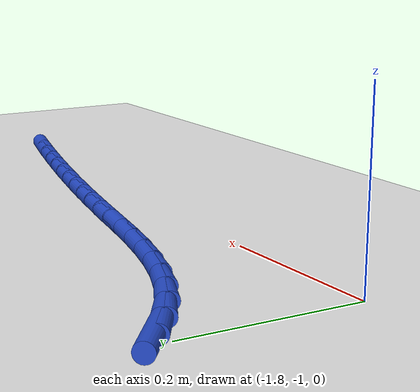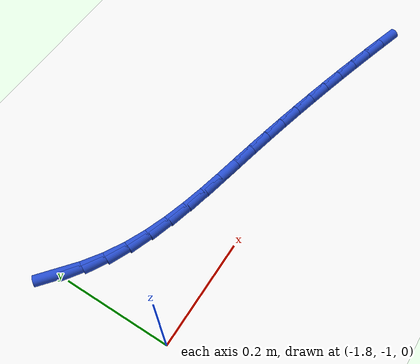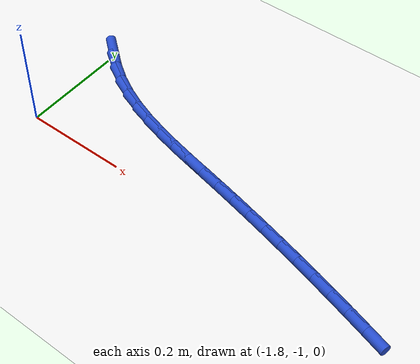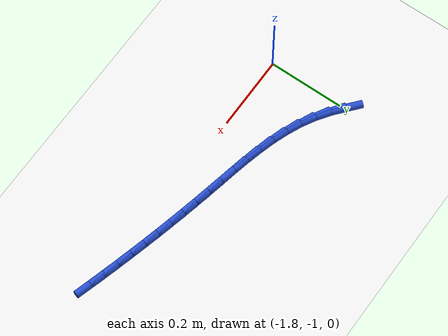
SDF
<sdf version="1.6">
 <world name="default">
  <model name="ground_plane">
   <static>1</static>
   <link name="link">
    <collision name="collision">
     <geometry><plane><normal>0 0 1</normal><size>100 100</size></plane></geometry>
     <surface><friction><ode><mu>100</mu><mu2>50</mu2></ode></friction></surface>
    </collision>
    <visual name="visual">
     <cast_shadows>0</cast_shadows>
     <geometry><plane><normal>0 0 1</normal><size>100 100</size></plane></geometry>
     <material>
      <script><uri>file://media/materials/scripts/gazebo.material</uri><name>Gazebo/WhiteGlow</name></script>
     </material>
    </visual>
   </link>
  </model>
  <model name="line">
   <link name="link_99">
    <pose>-1.8013743119323045 -0.7814317315127216 0.01 0 1.57 -0.6939951414744405</pose>
    <collision name="collision">
     <geometry><cylinder><radius>0.01</radius><length>0.08</length></cylinder></geometry>
    </collision>
    <visual name="visual">
     <material>
      <script><name>Gazebo/Blue</name><uri>file://media/materials/scripts/gazebo.material</uri></script>
     </material>
     <geometry><cylinder><radius>0.01</radius><length>0.08</length></cylinder></geometry>
    </visual>
   </link>
   <link name="link_100">
    <pose>-1.7701022036587113 -0.807452468249835 0.01 0 1.57 -0.6033100897275476</pose>
    <collision name="collision">
     <geometry><cylinder><radius>0.01</radius><length>0.08</length></cylinder></geometry>
    </collision>
    <visual name="visual">
     <material>
      <script><name>Gazebo/Blue</name><uri>file://media/materials/scripts/gazebo.material</uri></script>
     </material>
     <geometry><cylinder><radius>0.01</radius><length>0.08</length></cylinder></geometry>
    </visual>
   </link>
   <link name="link_101">
    <pose>-1.736808168899855 -0.8303922982501177 0.01 0 1.57 -0.5067956188985966</pose>
    <collision name="collision">
     <geometry><cylinder><radius>0.01</radius><length>0.08</length></cylinder></geometry>
    </collision>
    <visual name="visual">
     <material>
      <script><name>Gazebo/Blue</name><uri>file://media/materials/scripts/gazebo.material</uri></script>
     </material>
     <geometry><cylinder><radius>0.01</radius><length>0.08</length></cylinder></geometry>
    </visual>
   </link>
   <link name="link_102">
    <pose>-1.7014917855247105 -0.8499985152830396 0.01 0 1.57 -0.41767024187886886</pose>
    <collision name="collision">
     <geometry><cylinder><radius>0.01</radius><length>0.08</length></cylinder></geometry>
    </collision>
    <visual name="visual">
     <material>
      <script><name>Gazebo/Blue</name><uri>file://media/materials/scripts/gazebo.material</uri></script>
     </material>
     <geometry><cylinder><radius>0.01</radius><length>0.08</length></cylinder></geometry>
    </visual>
   </link>
   <link name="link_103">
    <pose>-1.6643676575839117 -0.8664735005263349 0.01 0 1.57 -0.34468582524345803</pose>
    <collision name="collision">
     <geometry><cylinder><radius>0.01</radius><length>0.08</length></cylinder></geometry>
    </collision>
    <visual name="visual">
     <material>
      <script><name>Gazebo/Blue</name><uri>file://media/materials/scripts/gazebo.material</uri></script>
     </material>
     <geometry><cylinder><radius>0.01</radius><length>0.08</length></cylinder></geometry>
    </visual>
   </link>
   <link name="link_104">
    <pose>-1.625793415950993 -0.8803223411149619 0.01 0 1.57 -0.2876130700699712</pose>
    <collision name="collision">
     <geometry><cylinder><radius>0.01</radius><length>0.08</length></cylinder></geometry>
    </collision>
    <visual name="visual">
     <material>
      <script><name>Gazebo/Blue</name><uri>file://media/materials/scripts/gazebo.material</uri></script>
     </material>
     <geometry><cylinder><radius>0.01</radius><length>0.08</length></cylinder></geometry>
    </visual>
   </link>
   <link name="link_105">
    <pose>-1.5861292761448686 -0.8920555943994465 0.01 0 1.57 -0.24567213084791134</pose>
    <collision name="collision">
     <geometry><cylinder><radius>0.01</radius><length>0.08</length></cylinder></geometry>
    </collision>
    <visual name="visual">
     <material>
      <script><name>Gazebo/Blue</name><uri>file://media/materials/scripts/gazebo.material</uri></script>
     </material>
     <geometry><cylinder><radius>0.01</radius><length>0.08</length></cylinder></geometry>
    </visual>
   </link>
   <link name="link_106">
    <pose>-1.5457354536844528 -0.9021838177303161 0.01 0 1.57 -0.21809009127103265</pose>
    <collision name="collision">
     <geometry><cylinder><radius>0.01</radius><length>0.08</length></cylinder></geometry>
    </collision>
    <visual name="visual">
     <material>
      <script><name>Gazebo/Blue</name><uri>file://media/materials/scripts/gazebo.material</uri></script>
     </material>
     <geometry><cylinder><radius>0.01</radius><length>0.08</length></cylinder></geometry>
    </visual>
   </link>
   <link name="link_107">
    <pose>-1.5049721640886586 -0.911217568458095 0.01 0 1.57 -0.20435045919051223</pose>
    <collision name="collision">
     <geometry><cylinder><radius>0.01</radius><length>0.08</length></cylinder></geometry>
    </collision>
    <visual name="visual">
     <material>
      <script><name>Gazebo/Blue</name><uri>file://media/materials/scripts/gazebo.material</uri></script>
     </material>
     <geometry><cylinder><radius>0.01</radius><length>0.08</length></cylinder></geometry>
    </visual>
   </link>
   <link name="link_108">
    <pose>-1.464199622876401 -0.9196674039333108 0.01 0 1.57 -0.20420685773614553</pose>
    <collision name="collision">
     <geometry><cylinder><radius>0.01</radius><length>0.08</length></cylinder></geometry>
    </collision>
    <visual name="visual">
     <material>
      <script><name>Gazebo/Blue</name><uri>file://media/materials/scripts/gazebo.material</uri></script>
     </material>
     <geometry><cylinder><radius>0.01</radius><length>0.08</length></cylinder></geometry>
    </visual>
   </link>
   <link name="link_109">
    <pose>-1.423773436541785 -0.9280394052714718 0.01 0 1.57 -0.2123067646813309</pose>
    <collision name="collision">
     <geometry><cylinder><radius>0.01</radius><length>0.08</length></cylinder></geometry>
    </collision>
    <visual name="visual">
     <material>
      <script><name>Gazebo/Blue</name><uri>file://media/materials/scripts/gazebo.material</uri></script>
     </material>
     <geometry><cylinder><radius>0.01</radius><length>0.08</length></cylinder></geometry>
    </visual>
   </link>
   <link name="link_110">
    <pose>-1.3838490966647117 -0.9366453041489247 0.01 0 1.57 -0.22107794012576856</pose>
    <collision name="collision">
     <geometry><cylinder><radius>0.01</radius><length>0.08</length></cylinder></geometry>
    </collision>
    <visual name="visual">
     <material>
      <script><name>Gazebo/Blue</name><uri>file://media/materials/scripts/gazebo.material</uri></script>
     </material>
     <geometry><cylinder><radius>0.01</radius><length>0.08</length></cylinder></geometry>
    </visual>
   </link>
   <link name="link_111">
    <pose>-1.3443093312761156 -0.9455319272349291 0.01 0 1.57 -0.22988395688460425</pose>
    <collision name="collision">
     <geometry><cylinder><radius>0.01</radius><length>0.08</length></cylinder></geometry>
    </collision>
    <visual name="visual">
     <material>
      <script><name>Gazebo/Blue</name><uri>file://media/materials/scripts/gazebo.material</uri></script>
     </material>
     <geometry><cylinder><radius>0.01</radius><length>0.08</length></cylinder></geometry>
    </visual>
   </link>
   <link name="link_112">
    <pose>-1.305017291345055 -0.9547270881680991 0.01 0 1.57 -0.23863243437352583</pose>
    <collision name="collision">
     <geometry><cylinder><radius>0.01</radius><length>0.08</length></cylinder></geometry>
    </collision>
    <visual name="visual">
     <material>
      <script><name>Gazebo/Blue</name><uri>file://media/materials/scripts/gazebo.material</uri></script>
     </material>
     <geometry><cylinder><radius>0.01</radius><length>0.08</length></cylinder></geometry>
    </visual>
   </link>
   <link name="link_113">
    <pose>-1.2658361278405856 -0.9642586005870494 0.01 0 1.57 -0.24723132578630866</pose>
    <collision name="collision">
     <geometry><cylinder><radius>0.01</radius><length>0.08</length></cylinder></geometry>
    </collision>
    <visual name="visual">
     <material>
      <script><name>Gazebo/Blue</name><uri>file://media/materials/scripts/gazebo.material</uri></script>
     </material>
     <geometry><cylinder><radius>0.01</radius><length>0.08</length></cylinder></geometry>
    </visual>
   </link>
   <link name="link_114">
    <pose>-1.2266289917317648 -0.9741542781303942 0.01 0 1.57 -0.2555921654668566</pose>
    <collision name="collision">
     <geometry><cylinder><radius>0.01</radius><length>0.08</length></cylinder></geometry>
    </collision>
    <visual name="visual">
     <material>
      <script><name>Gazebo/Blue</name><uri>file://media/materials/scripts/gazebo.material</uri></script>
     </material>
     <geometry><cylinder><radius>0.01</radius><length>0.08</length></cylinder></geometry>
    </visual>
   </link>
   <link name="link_115">
    <pose>-1.1872590339876492 -0.9844419344367479 0.01 0 1.57 -0.2636331006169619</pose>
    <collision name="collision">
     <geometry><cylinder><radius>0.01</radius><length>0.08</length></cylinder></geometry>
    </collision>
    <visual name="visual">
     <material>
      <script><name>Gazebo/Blue</name><uri>file://media/materials/scripts/gazebo.material</uri></script>
     </material>
     <geometry><cylinder><radius>0.01</radius><length>0.08</length></cylinder></geometry>
    </visual>
   </link>
   <link name="link_116">
    <pose>-1.1475894055772953 -0.9951493831447252 0.01 0 1.57 -0.27128149046396366</pose>
    <collision name="collision">
     <geometry><cylinder><radius>0.01</radius><length>0.08</length></cylinder></geometry>
    </collision>
    <visual name="visual">
     <material>
      <script><name>Gazebo/Blue</name><uri>file://media/materials/scripts/gazebo.material</uri></script>
     </material>
     <geometry><cylinder><radius>0.01</radius><length>0.08</length></cylinder></geometry>
    </visual>
   </link>
   <link name="link_117">
    <pose>-1.1074832574697615 -1.0063044378929402 0.01 0 1.57 -0.27847590647753134</pose>
    <collision name="collision">
     <geometry><cylinder><radius>0.01</radius><length>0.08</length></cylinder></geometry>
    </collision>
    <visual name="visual">
     <material>
      <script><name>Gazebo/Blue</name><uri>file://media/materials/scripts/gazebo.material</uri></script>
     </material>
     <geometry><cylinder><radius>0.01</radius><length>0.08</length></cylinder></geometry>
    </visual>
   </link>
   <link name="link_118">
    <pose>-1.0668037406341035 -1.0179349123200074 0.01 0 1.57 -0.28515203222248414</pose>
    <collision name="collision">
     <geometry><cylinder><radius>0.01</radius><length>0.08</length></cylinder></geometry>
    </collision>
    <visual name="visual">
     <material>
      <script><name>Gazebo/Blue</name><uri>file://media/materials/scripts/gazebo.material</uri></script>
     </material>
     <geometry><cylinder><radius>0.01</radius><length>0.08</length></cylinder></geometry>
    </visual>
   </link>
  </model>
 </world>
</sdf>
